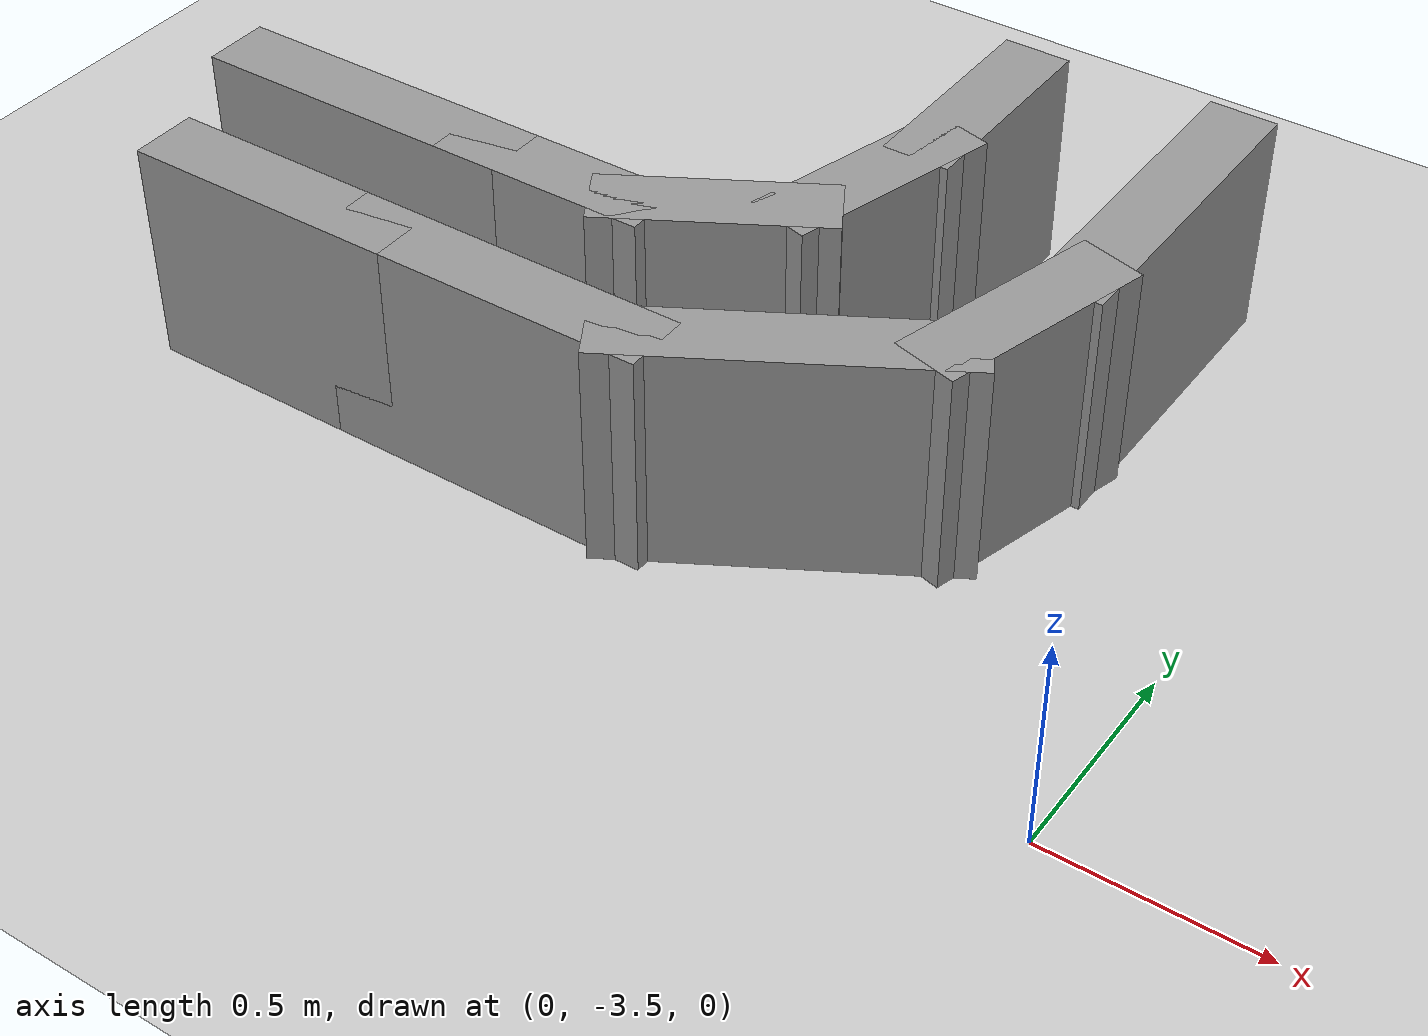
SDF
<?xml version='1.0'?>
<sdf version='1.7'>
  <world name="train_world">
      <!-- 基础环境 -->
      <include>
          <uri>model://sun</uri>
      </include>

      <include>
          <uri>model://ground_plane</uri>
      </include>

      <!-- 世界物理配置 - 让地面更坚硬 -->
      <physics type="ode">
          <real_time_update_rate>1000</real_time_update_rate>
          <real_time_factor>1</real_time_factor>
          <ode>
              <solver>
                  <type>quick</type>
                  <iters>50</iters>
                  <precon>1</precon>
                  <use_dynamic_moi_rescaling>1</use_dynamic_moi_rescaling>
              </solver>
              <constraints>
                  <cfm>0.00001</cfm>
                  <erp>0.8</erp>
                  <contact_max_correcting_vel>100</contact_max_correcting_vel>
                  <contact_surface_layer>0.001</contact_surface_layer>
              </constraints>
          </ode>
      </physics>
  <model name='test2'>
    <pose>-1.10767 -1.77755 0 0 -0 0</pose>
    <link name='Wall_0'>
      <collision name='Wall_0_Collision'>
        <geometry>
          <box>
            <size>0.625786 0.15 0.5</size>
          </box>
        </geometry>
        <pose>0 0 0.25 0 -0 0</pose>
      </collision>
      <visual name='Wall_0_Visual'>
        <pose>0 0 0.25 0 -0 0</pose>
        <geometry>
          <box>
            <size>0.625786 0.15 0.5</size>
          </box>
        </geometry>
        <material>
          <script>
            <uri>file://media/materials/scripts/gazebo.material</uri>
            <name>Gazebo/Grey</name>
          </script>
          <ambient>1 1 1 1</ambient>
        </material>
        <meta>
          <layer>0</layer>
        </meta>
      </visual>
      <pose>-0.670567 -1.6751 0.25 0 -0 0</pose>
    </link>
    <link name='Wall_11'>
      <collision name='Wall_11_Collision'>
        <geometry>
          <box>
            <size>0.75 0.15 0.5</size>
          </box>
        </geometry>
        <pose>0 0 0.25 0 -0 0</pose>
      </collision>
      <visual name='Wall_11_Visual'>
        <pose>0 0 0.25 0 -0 0</pose>
        <geometry>
          <box>
            <size>0.75 0.15 0.5</size>
          </box>
        </geometry>
        <material>
          <script>
            <uri>file://media/materials/scripts/gazebo.material</uri>
            <name>Gazebo/Grey</name>
          </script>
          <ambient>1 1 1 1</ambient>
        </material>
        <meta>
          <layer>0</layer>
        </meta>
      </visual>
      <pose>-0.132674 -1.6751 0.25 0 -0 0</pose>
    </link>
    <link name='Wall_12'>
      <collision name='Wall_12_Collision'>
        <geometry>
          <box>
            <size>0.75 0.15 0.5</size>
          </box>
        </geometry>
        <pose>0 0 0.25 0 -0 0</pose>
      </collision>
      <visual name='Wall_12_Visual'>
        <pose>0 0 0.25 0 -0 0</pose>
        <geometry>
          <box>
            <size>0.75 0.15 0.5</size>
          </box>
        </geometry>
        <material>
          <script>
            <uri>file://media/materials/scripts/gazebo.material</uri>
            <name>Gazebo/Grey</name>
          </script>
          <ambient>1 1 1 1</ambient>
        </material>
        <meta>
          <layer>0</layer>
        </meta>
      </visual>
      <pose>0.427134 -1.5251 0.25 0 -0 0.523599</pose>
    </link>
    <link name='Wall_13'>
      <collision name='Wall_13_Collision'>
        <geometry>
          <box>
            <size>0.5 0.15 0.5</size>
          </box>
        </geometry>
        <pose>0 0 0.25 0 -0 0</pose>
      </collision>
      <visual name='Wall_13_Visual'>
        <pose>0 0 0.25 0 -0 0</pose>
        <geometry>
          <box>
            <size>0.5 0.15 0.5</size>
          </box>
        </geometry>
        <material>
          <script>
            <uri>file://media/materials/scripts/gazebo.material</uri>
            <name>Gazebo/Grey</name>
          </script>
          <ambient>1 1 1 1</ambient>
        </material>
        <meta>
          <layer>0</layer>
        </meta>
      </visual>
      <pose>0.732235 -1.20606 0.25 0 -0 1.309</pose>
    </link>
    <link name='Wall_14'>
      <collision name='Wall_14_Collision'>
        <geometry>
          <box>
            <size>0.75 0.15 0.5</size>
          </box>
        </geometry>
        <pose>0 0 0.25 0 -0 0</pose>
      </collision>
      <visual name='Wall_14_Visual'>
        <pose>0 0 0.25 0 -0 0</pose>
        <geometry>
          <box>
            <size>0.75 0.15 0.5</size>
          </box>
        </geometry>
        <material>
          <script>
            <uri>file://media/materials/scripts/gazebo.material</uri>
            <name>Gazebo/Grey</name>
          </script>
          <ambient>1 1 1 1</ambient>
        </material>
        <meta>
          <layer>0</layer>
        </meta>
      </visual>
      <pose>0.777528 -0.737026 0.25 0 -0 1.5708</pose>
    </link>
    <link name='Wall_4'>
      <collision name='Wall_4_Collision'>
        <geometry>
          <box>
            <size>0.75 0.15 0.5</size>
          </box>
        </geometry>
        <pose>0 0 0.25 0 -0 0</pose>
      </collision>
      <visual name='Wall_4_Visual'>
        <pose>0 0 0.25 0 -0 0</pose>
        <geometry>
          <box>
            <size>0.75 0.15 0.5</size>
          </box>
        </geometry>
        <material>
          <script>
            <uri>file://media/materials/scripts/gazebo.material</uri>
            <name>Gazebo/Grey</name>
          </script>
          <ambient>1 1 1 1</ambient>
        </material>
        <meta>
          <layer>0</layer>
        </meta>
      </visual>
      <pose>-0.732674 -1.3251 0.25 0 -0 3.14159</pose>
    </link>
    <link name='Wall_6'>
      <collision name='Wall_6_Collision'>
        <geometry>
          <box>
            <size>0.5 0.15 0.5</size>
          </box>
        </geometry>
        <pose>0 0 0.25 0 -0 0</pose>
      </collision>
      <visual name='Wall_6_Visual'>
        <pose>0 0 0.25 0 -0 0</pose>
        <geometry>
          <box>
            <size>0.5 0.15 0.5</size>
          </box>
        </geometry>
        <material>
          <script>
            <uri>file://media/materials/scripts/gazebo.material</uri>
            <name>Gazebo/Grey</name>
          </script>
          <ambient>1 1 1 1</ambient>
        </material>
        <meta>
          <layer>0</layer>
        </meta>
      </visual>
      <pose>-0.257674 -1.3251 0.25 0 -0 0</pose>
    </link>
    <link name='Wall_7'>
      <collision name='Wall_7_Collision'>
        <geometry>
          <box>
            <size>0.5 0.15 0.5</size>
          </box>
        </geometry>
        <pose>0 0 0.25 0 -0 0</pose>
      </collision>
      <visual name='Wall_7_Visual'>
        <pose>0 0 0.25 0 -0 0</pose>
        <geometry>
          <box>
            <size>0.5 0.15 0.5</size>
          </box>
        </geometry>
        <material>
          <script>
            <uri>file://media/materials/scripts/gazebo.material</uri>
            <name>Gazebo/Grey</name>
          </script>
          <ambient>1 1 1 1</ambient>
        </material>
        <meta>
          <layer>0</layer>
        </meta>
      </visual>
      <pose>0.068881 -1.2376 0.25 0 -0 0.523599</pose>
    </link>
    <link name='Wall_8'>
      <collision name='Wall_8_Collision'>
        <geometry>
          <box>
            <size>0.5 0.15 0.5</size>
          </box>
        </geometry>
        <pose>0 0 0.25 0 -0 0</pose>
      </collision>
      <visual name='Wall_8_Visual'>
        <pose>0 0 0.25 0 -0 0</pose>
        <geometry>
          <box>
            <size>0.5 0.15 0.5</size>
          </box>
        </geometry>
        <material>
          <script>
            <uri>file://media/materials/scripts/gazebo.material</uri>
            <name>Gazebo/Grey</name>
          </script>
          <ambient>1 1 1 1</ambient>
        </material>
        <meta>
          <layer>0</layer>
        </meta>
      </visual>
      <pose>0.265728 -0.981064 0.25 0 -0 1.309</pose>
    </link>
    <link name='Wall_9'>
      <collision name='Wall_9_Collision'>
        <geometry>
          <box>
            <size>0.5 0.15 0.5</size>
          </box>
        </geometry>
        <pose>0 0 0.25 0 -0 0</pose>
      </collision>
      <visual name='Wall_9_Visual'>
        <pose>0 0 0.25 0 -0 0</pose>
        <geometry>
          <box>
            <size>0.5 0.15 0.5</size>
          </box>
        </geometry>
        <material>
          <script>
            <uri>file://media/materials/scripts/gazebo.material</uri>
            <name>Gazebo/Grey</name>
          </script>
          <ambient>1 1 1 1</ambient>
        </material>
        <meta>
          <layer>0</layer>
        </meta>
      </visual>
      <pose>0.311022 -0.637027 0.25 0 -0 1.5708</pose>
    </link>
    <static>1</static>
  </model>
  </world>
</sdf>
